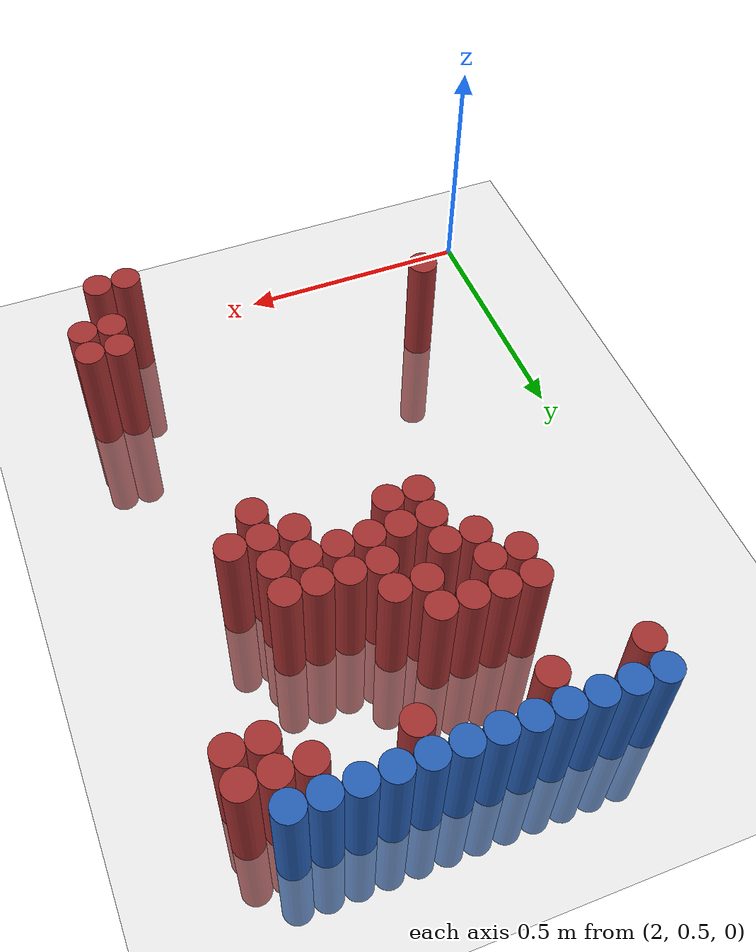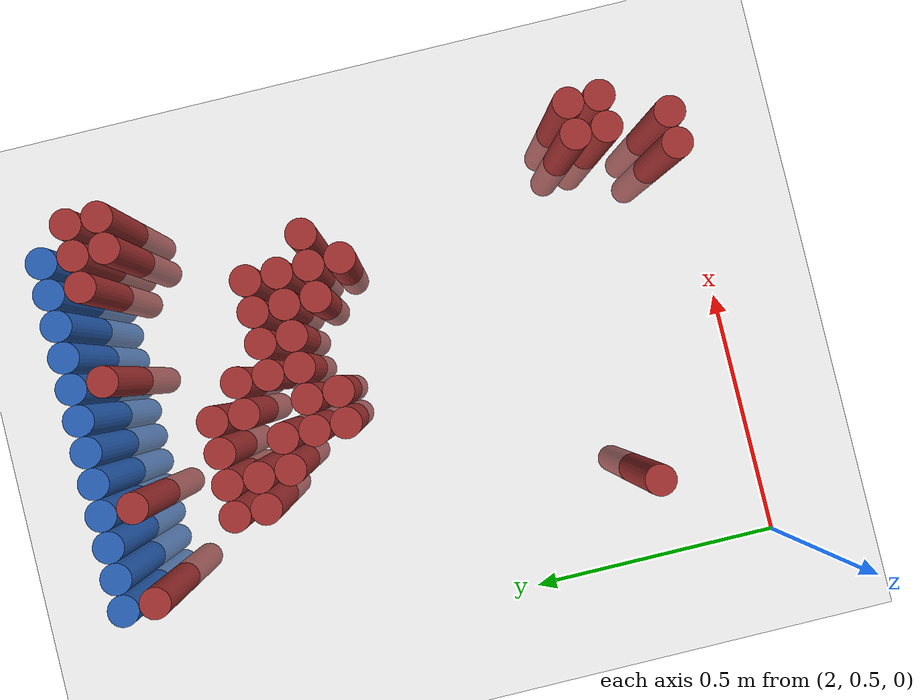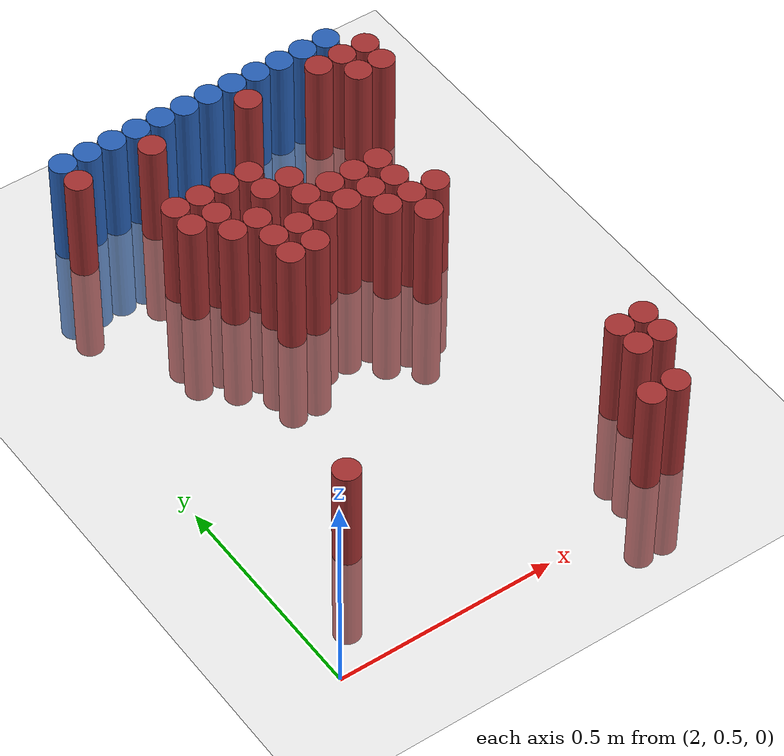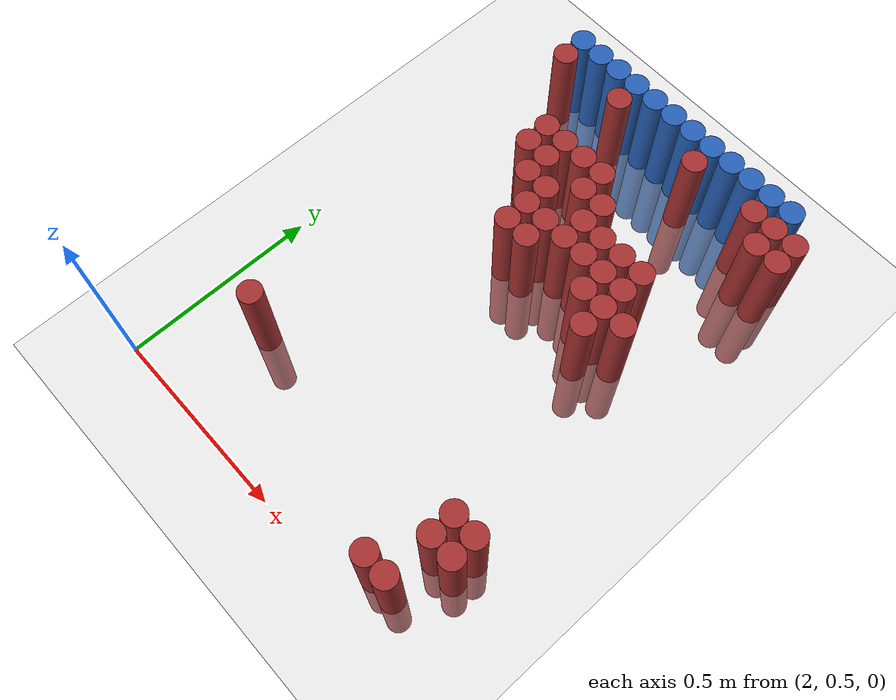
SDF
<sdf version="1.6">
 <world name="default">
  <model name="ground_plane">
   <static>1</static>
   <link name="link">
    <collision name="collision">
     <geometry><plane><normal>0 0 1</normal><size>100 100</size></plane></geometry>
     <surface><friction><ode><mu>100</mu><mu2>50</mu2></ode></friction></surface>
    </collision>
    <visual name="visual">
     <cast_shadows>0</cast_shadows>
     <geometry><plane><normal>0 0 1</normal><size>100 100</size></plane></geometry>
     <material>
      <script><uri>file://media/materials/scripts/gazebo.material</uri><name>Gazebo/Grey</name></script>
     </material>
    </visual>
   </link>
  </model>
  <model name="unit_cylinder_97">
   <static>1</static>
   <pose>2.190000 1.770000 0.000000 0.000000 0.000000 0.000000</pose>
   <link name="link">
    <inertial>
     <mass>1</mass>
     <inertia><ixx>0.145833</ixx><ixy>0</ixy><ixz>0</ixz><iyy>0.145833</iyy><iyz>0</iyz><izz>0.125</izz></inertia>
    </inertial>
    <collision name="collision">
     <geometry><cylinder><radius>0.030000</radius><length>0.5</length></cylinder></geometry>
    </collision>
    <visual name="visual">
     <geometry><cylinder><radius>0.030000</radius><length>0.5</length></cylinder></geometry>
     <material>
      <ambient>0.152000 0.379000 0.720000 1</ambient>
      <diffuse>0.152000 0.379000 0.720000 1</diffuse>
     </material>
     <material>
      <script><name>Gazebo/Grey</name><uri>file://media/materials/scripts/gazebo.material</uri></script>
     </material>
    </visual>
   </link>
  </model>
  <model name="unit_cylinder_98">
   <static>1</static>
   <pose>2.250000 1.770000 0.000000 0.000000 0.000000 0.000000</pose>
   <link name="link">
    <inertial>
     <mass>1</mass>
     <inertia><ixx>0.145833</ixx><ixy>0</ixy><ixz>0</ixz><iyy>0.145833</iyy><iyz>0</iyz><izz>0.125</izz></inertia>
    </inertial>
    <collision name="collision">
     <geometry><cylinder><radius>0.030000</radius><length>0.5</length></cylinder></geometry>
    </collision>
    <visual name="visual">
     <geometry><cylinder><radius>0.030000</radius><length>0.5</length></cylinder></geometry>
     <material>
      <ambient>0.152000 0.379000 0.720000 1</ambient>
      <diffuse>0.152000 0.379000 0.720000 1</diffuse>
     </material>
     <material>
      <script><name>Gazebo/Grey</name><uri>file://media/materials/scripts/gazebo.material</uri></script>
     </material>
    </visual>
   </link>
  </model>
  <model name="unit_cylinder_99">
   <static>1</static>
   <pose>2.310000 1.770000 0.000000 0.000000 0.000000 0.000000</pose>
   <link name="link">
    <inertial>
     <mass>1</mass>
     <inertia><ixx>0.145833</ixx><ixy>0</ixy><ixz>0</ixz><iyy>0.145833</iyy><iyz>0</iyz><izz>0.125</izz></inertia>
    </inertial>
    <collision name="collision">
     <geometry><cylinder><radius>0.030000</radius><length>0.5</length></cylinder></geometry>
    </collision>
    <visual name="visual">
     <geometry><cylinder><radius>0.030000</radius><length>0.5</length></cylinder></geometry>
     <material>
      <ambient>0.152000 0.379000 0.720000 1</ambient>
      <diffuse>0.152000 0.379000 0.720000 1</diffuse>
     </material>
     <material>
      <script><name>Gazebo/Grey</name><uri>file://media/materials/scripts/gazebo.material</uri></script>
     </material>
    </visual>
   </link>
  </model>
  <model name="unit_cylinder_100">
   <static>1</static>
   <pose>2.370000 1.770000 0.000000 0.000000 0.000000 0.000000</pose>
   <link name="link">
    <inertial>
     <mass>1</mass>
     <inertia><ixx>0.145833</ixx><ixy>0</ixy><ixz>0</ixz><iyy>0.145833</iyy><iyz>0</iyz><izz>0.125</izz></inertia>
    </inertial>
    <collision name="collision">
     <geometry><cylinder><radius>0.030000</radius><length>0.5</length></cylinder></geometry>
    </collision>
    <visual name="visual">
     <geometry><cylinder><radius>0.030000</radius><length>0.5</length></cylinder></geometry>
     <material>
      <ambient>0.152000 0.379000 0.720000 1</ambient>
      <diffuse>0.152000 0.379000 0.720000 1</diffuse>
     </material>
     <material>
      <script><name>Gazebo/Grey</name><uri>file://media/materials/scripts/gazebo.material</uri></script>
     </material>
    </visual>
   </link>
  </model>
  <model name="unit_cylinder_101">
   <static>1</static>
   <pose>2.430000 1.770000 0.000000 0.000000 0.000000 0.000000</pose>
   <link name="link">
    <inertial>
     <mass>1</mass>
     <inertia><ixx>0.145833</ixx><ixy>0</ixy><ixz>0</ixz><iyy>0.145833</iyy><iyz>0</iyz><izz>0.125</izz></inertia>
    </inertial>
    <collision name="collision">
     <geometry><cylinder><radius>0.030000</radius><length>0.5</length></cylinder></geometry>
    </collision>
    <visual name="visual">
     <geometry><cylinder><radius>0.030000</radius><length>0.5</length></cylinder></geometry>
     <material>
      <ambient>0.152000 0.379000 0.720000 1</ambient>
      <diffuse>0.152000 0.379000 0.720000 1</diffuse>
     </material>
     <material>
      <script><name>Gazebo/Grey</name><uri>file://media/materials/scripts/gazebo.material</uri></script>
     </material>
    </visual>
   </link>
  </model>
  <model name="unit_cylinder_102">
   <static>1</static>
   <pose>2.490000 1.770000 0.000000 0.000000 0.000000 0.000000</pose>
   <link name="link">
    <inertial>
     <mass>1</mass>
     <inertia><ixx>0.145833</ixx><ixy>0</ixy><ixz>0</ixz><iyy>0.145833</iyy><iyz>0</iyz><izz>0.125</izz></inertia>
    </inertial>
    <collision name="collision">
     <geometry><cylinder><radius>0.030000</radius><length>0.5</length></cylinder></geometry>
    </collision>
    <visual name="visual">
     <geometry><cylinder><radius>0.030000</radius><length>0.5</length></cylinder></geometry>
     <material>
      <ambient>0.152000 0.379000 0.720000 1</ambient>
      <diffuse>0.152000 0.379000 0.720000 1</diffuse>
     </material>
     <material>
      <script><name>Gazebo/Grey</name><uri>file://media/materials/scripts/gazebo.material</uri></script>
     </material>
    </visual>
   </link>
  </model>
  <model name="unit_cylinder_103">
   <static>1</static>
   <pose>2.550000 1.770000 0.000000 0.000000 0.000000 0.000000</pose>
   <link name="link">
    <inertial>
     <mass>1</mass>
     <inertia><ixx>0.145833</ixx><ixy>0</ixy><ixz>0</ixz><iyy>0.145833</iyy><iyz>0</iyz><izz>0.125</izz></inertia>
    </inertial>
    <collision name="collision">
     <geometry><cylinder><radius>0.030000</radius><length>0.5</length></cylinder></geometry>
    </collision>
    <visual name="visual">
     <geometry><cylinder><radius>0.030000</radius><length>0.5</length></cylinder></geometry>
     <material>
      <ambient>0.152000 0.379000 0.720000 1</ambient>
      <diffuse>0.152000 0.379000 0.720000 1</diffuse>
     </material>
     <material>
      <script><name>Gazebo/Grey</name><uri>file://media/materials/scripts/gazebo.material</uri></script>
     </material>
    </visual>
   </link>
  </model>
  <model name="unit_cylinder_104">
   <static>1</static>
   <pose>2.610000 1.770000 0.000000 0.000000 0.000000 0.000000</pose>
   <link name="link">
    <inertial>
     <mass>1</mass>
     <inertia><ixx>0.145833</ixx><ixy>0</ixy><ixz>0</ixz><iyy>0.145833</iyy><iyz>0</iyz><izz>0.125</izz></inertia>
    </inertial>
    <collision name="collision">
     <geometry><cylinder><radius>0.030000</radius><length>0.5</length></cylinder></geometry>
    </collision>
    <visual name="visual">
     <geometry><cylinder><radius>0.030000</radius><length>0.5</length></cylinder></geometry>
     <material>
      <ambient>0.152000 0.379000 0.720000 1</ambient>
      <diffuse>0.152000 0.379000 0.720000 1</diffuse>
     </material>
     <material>
      <script><name>Gazebo/Grey</name><uri>file://media/materials/scripts/gazebo.material</uri></script>
     </material>
    </visual>
   </link>
  </model>
  <model name="unit_cylinder_105">
   <static>1</static>
   <pose>2.670000 1.770000 0.000000 0.000000 0.000000 0.000000</pose>
   <link name="link">
    <inertial>
     <mass>1</mass>
     <inertia><ixx>0.145833</ixx><ixy>0</ixy><ixz>0</ixz><iyy>0.145833</iyy><iyz>0</iyz><izz>0.125</izz></inertia>
    </inertial>
    <collision name="collision">
     <geometry><cylinder><radius>0.030000</radius><length>0.5</length></cylinder></geometry>
    </collision>
    <visual name="visual">
     <geometry><cylinder><radius>0.030000</radius><length>0.5</length></cylinder></geometry>
     <material>
      <ambient>0.152000 0.379000 0.720000 1</ambient>
      <diffuse>0.152000 0.379000 0.720000 1</diffuse>
     </material>
     <material>
      <script><name>Gazebo/Grey</name><uri>file://media/materials/scripts/gazebo.material</uri></script>
     </material>
    </visual>
   </link>
  </model>
  <model name="unit_cylinder_106">
   <static>1</static>
   <pose>2.730000 1.770000 0.000000 0.000000 0.000000 0.000000</pose>
   <link name="link">
    <inertial>
     <mass>1</mass>
     <inertia><ixx>0.145833</ixx><ixy>0</ixy><ixz>0</ixz><iyy>0.145833</iyy><iyz>0</iyz><izz>0.125</izz></inertia>
    </inertial>
    <collision name="collision">
     <geometry><cylinder><radius>0.030000</radius><length>0.5</length></cylinder></geometry>
    </collision>
    <visual name="visual">
     <geometry><cylinder><radius>0.030000</radius><length>0.5</length></cylinder></geometry>
     <material>
      <ambient>0.152000 0.379000 0.720000 1</ambient>
      <diffuse>0.152000 0.379000 0.720000 1</diffuse>
     </material>
     <material>
      <script><name>Gazebo/Grey</name><uri>file://media/materials/scripts/gazebo.material</uri></script>
     </material>
    </visual>
   </link>
  </model>
  <model name="unit_cylinder_107">
   <static>1</static>
   <pose>2.790000 1.770000 0.000000 0.000000 0.000000 0.000000</pose>
   <link name="link">
    <inertial>
     <mass>1</mass>
     <inertia><ixx>0.145833</ixx><ixy>0</ixy><ixz>0</ixz><iyy>0.145833</iyy><iyz>0</iyz><izz>0.125</izz></inertia>
    </inertial>
    <collision name="collision">
     <geometry><cylinder><radius>0.030000</radius><length>0.5</length></cylinder></geometry>
    </collision>
    <visual name="visual">
     <geometry><cylinder><radius>0.030000</radius><length>0.5</length></cylinder></geometry>
     <material>
      <ambient>0.152000 0.379000 0.720000 1</ambient>
      <diffuse>0.152000 0.379000 0.720000 1</diffuse>
     </material>
     <material>
      <script><name>Gazebo/Grey</name><uri>file://media/materials/scripts/gazebo.material</uri></script>
     </material>
    </visual>
   </link>
  </model>
  <model name="unit_cylinder_108">
   <static>1</static>
   <pose>2.850000 1.770000 0.000000 0.000000 0.000000 0.000000</pose>
   <link name="link">
    <inertial>
     <mass>1</mass>
     <inertia><ixx>0.145833</ixx><ixy>0</ixy><ixz>0</ixz><iyy>0.145833</iyy><iyz>0</iyz><izz>0.125</izz></inertia>
    </inertial>
    <collision name="collision">
     <geometry><cylinder><radius>0.030000</radius><length>0.5</length></cylinder></geometry>
    </collision>
    <visual name="visual">
     <geometry><cylinder><radius>0.030000</radius><length>0.5</length></cylinder></geometry>
     <material>
      <ambient>0.152000 0.379000 0.720000 1</ambient>
      <diffuse>0.152000 0.379000 0.720000 1</diffuse>
     </material>
     <material>
      <script><name>Gazebo/Grey</name><uri>file://media/materials/scripts/gazebo.material</uri></script>
     </material>
    </visual>
   </link>
  </model>
  <model name="unit_cylinder_126">
   <static>1</static>
   <pose>2.190000 1.710000 0.000000 0.000000 0.000000 0.000000</pose>
   <link name="link">
    <inertial>
     <mass>1</mass>
     <inertia><ixx>0.145833</ixx><ixy>0</ixy><ixz>0</ixz><iyy>0.145833</iyy><iyz>0</iyz><izz>0.125</izz></inertia>
    </inertial>
    <collision name="collision">
     <geometry><cylinder><radius>0.030000</radius><length>0.5</length></cylinder></geometry>
    </collision>
    <visual name="visual">
     <geometry><cylinder><radius>0.030000</radius><length>0.5</length></cylinder></geometry>
     <material>
      <ambient>0.648000 0.192000 0.192000 1</ambient>
      <diffuse>0.648000 0.192000 0.192000 1</diffuse>
     </material>
     <material>
      <script><name>Gazebo/Grey</name><uri>file://media/materials/scripts/gazebo.material</uri></script>
     </material>
    </visual>
   </link>
  </model>
  <model name="unit_cylinder_127">
   <static>1</static>
   <pose>2.370000 1.710000 0.000000 0.000000 0.000000 0.000000</pose>
   <link name="link">
    <inertial>
     <mass>1</mass>
     <inertia><ixx>0.145833</ixx><ixy>0</ixy><ixz>0</ixz><iyy>0.145833</iyy><iyz>0</iyz><izz>0.125</izz></inertia>
    </inertial>
    <collision name="collision">
     <geometry><cylinder><radius>0.030000</radius><length>0.5</length></cylinder></geometry>
    </collision>
    <visual name="visual">
     <geometry><cylinder><radius>0.030000</radius><length>0.5</length></cylinder></geometry>
     <material>
      <ambient>0.648000 0.192000 0.192000 1</ambient>
      <diffuse>0.648000 0.192000 0.192000 1</diffuse>
     </material>
     <material>
      <script><name>Gazebo/Grey</name><uri>file://media/materials/scripts/gazebo.material</uri></script>
     </material>
    </visual>
   </link>
  </model>
  <model name="unit_cylinder_128">
   <static>1</static>
   <pose>2.610000 1.710000 0.000000 0.000000 0.000000 0.000000</pose>
   <link name="link">
    <inertial>
     <mass>1</mass>
     <inertia><ixx>0.145833</ixx><ixy>0</ixy><ixz>0</ixz><iyy>0.145833</iyy><iyz>0</iyz><izz>0.125</izz></inertia>
    </inertial>
    <collision name="collision">
     <geometry><cylinder><radius>0.030000</radius><length>0.5</length></cylinder></geometry>
    </collision>
    <visual name="visual">
     <geometry><cylinder><radius>0.030000</radius><length>0.5</length></cylinder></geometry>
     <material>
      <ambient>0.648000 0.192000 0.192000 1</ambient>
      <diffuse>0.648000 0.192000 0.192000 1</diffuse>
     </material>
     <material>
      <script><name>Gazebo/Grey</name><uri>file://media/materials/scripts/gazebo.material</uri></script>
     </material>
    </visual>
   </link>
  </model>
  <model name="unit_cylinder_129">
   <static>1</static>
   <pose>2.790000 1.710000 0.000000 0.000000 0.000000 0.000000</pose>
   <link name="link">
    <inertial>
     <mass>1</mass>
     <inertia><ixx>0.145833</ixx><ixy>0</ixy><ixz>0</ixz><iyy>0.145833</iyy><iyz>0</iyz><izz>0.125</izz></inertia>
    </inertial>
    <collision name="collision">
     <geometry><cylinder><radius>0.030000</radius><length>0.5</length></cylinder></geometry>
    </collision>
    <visual name="visual">
     <geometry><cylinder><radius>0.030000</radius><length>0.5</length></cylinder></geometry>
     <material>
      <ambient>0.648000 0.192000 0.192000 1</ambient>
      <diffuse>0.648000 0.192000 0.192000 1</diffuse>
     </material>
     <material>
      <script><name>Gazebo/Grey</name><uri>file://media/materials/scripts/gazebo.material</uri></script>
     </material>
    </visual>
   </link>
  </model>
  <model name="unit_cylinder_130">
   <static>1</static>
   <pose>2.850000 1.710000 0.000000 0.000000 0.000000 0.000000</pose>
   <link name="link">
    <inertial>
     <mass>1</mass>
     <inertia><ixx>0.145833</ixx><ixy>0</ixy><ixz>0</ixz><iyy>0.145833</iyy><iyz>0</iyz><izz>0.125</izz></inertia>
    </inertial>
    <collision name="collision">
     <geometry><cylinder><radius>0.030000</radius><length>0.5</length></cylinder></geometry>
    </collision>
    <visual name="visual">
     <geometry><cylinder><radius>0.030000</radius><length>0.5</length></cylinder></geometry>
     <material>
      <ambient>0.648000 0.192000 0.192000 1</ambient>
      <diffuse>0.648000 0.192000 0.192000 1</diffuse>
     </material>
     <material>
      <script><name>Gazebo/Grey</name><uri>file://media/materials/scripts/gazebo.material</uri></script>
     </material>
    </visual>
   </link>
  </model>
  <model name="unit_cylinder_131">
   <static>1</static>
   <pose>2.910000 1.710000 0.000000 0.000000 0.000000 0.000000</pose>
   <link name="link">
    <inertial>
     <mass>1</mass>
     <inertia><ixx>0.145833</ixx><ixy>0</ixy><ixz>0</ixz><iyy>0.145833</iyy><iyz>0</iyz><izz>0.125</izz></inertia>
    </inertial>
    <collision name="collision">
     <geometry><cylinder><radius>0.030000</radius><length>0.5</length></cylinder></geometry>
    </collision>
    <visual name="visual">
     <geometry><cylinder><radius>0.030000</radius><length>0.5</length></cylinder></geometry>
     <material>
      <ambient>0.648000 0.192000 0.192000 1</ambient>
      <diffuse>0.648000 0.192000 0.192000 1</diffuse>
     </material>
     <material>
      <script><name>Gazebo/Grey</name><uri>file://media/materials/scripts/gazebo.material</uri></script>
     </material>
    </visual>
   </link>
  </model>
  <model name="unit_cylinder_140">
   <static>1</static>
   <pose>2.850000 1.650000 0.000000 0.000000 0.000000 0.000000</pose>
   <link name="link">
    <inertial>
     <mass>1</mass>
     <inertia><ixx>0.145833</ixx><ixy>0</ixy><ixz>0</ixz><iyy>0.145833</iyy><iyz>0</iyz><izz>0.125</izz></inertia>
    </inertial>
    <collision name="collision">
     <geometry><cylinder><radius>0.030000</radius><length>0.5</length></cylinder></geometry>
    </collision>
    <visual name="visual">
     <geometry><cylinder><radius>0.030000</radius><length>0.5</length></cylinder></geometry>
     <material>
      <ambient>0.648000 0.192000 0.192000 1</ambient>
      <diffuse>0.648000 0.192000 0.192000 1</diffuse>
     </material>
     <material>
      <script><name>Gazebo/Grey</name><uri>file://media/materials/scripts/gazebo.material</uri></script>
     </material>
    </visual>
   </link>
  </model>
  <model name="unit_cylinder_141">
   <static>1</static>
   <pose>2.910000 1.650000 0.000000 0.000000 0.000000 0.000000</pose>
   <link name="link">
    <inertial>
     <mass>1</mass>
     <inertia><ixx>0.145833</ixx><ixy>0</ixy><ixz>0</ixz><iyy>0.145833</iyy><iyz>0</iyz><izz>0.125</izz></inertia>
    </inertial>
    <collision name="collision">
     <geometry><cylinder><radius>0.030000</radius><length>0.5</length></cylinder></geometry>
    </collision>
    <visual name="visual">
     <geometry><cylinder><radius>0.030000</radius><length>0.5</length></cylinder></geometry>
     <material>
      <ambient>0.648000 0.192000 0.192000 1</ambient>
      <diffuse>0.648000 0.192000 0.192000 1</diffuse>
     </material>
     <material>
      <script><name>Gazebo/Grey</name><uri>file://media/materials/scripts/gazebo.material</uri></script>
     </material>
    </visual>
   </link>
  </model>
  <model name="unit_cylinder_152">
   <static>1</static>
   <pose>2.310000 1.530000 0.000000 0.000000 0.000000 0.000000</pose>
   <link name="link">
    <inertial>
     <mass>1</mass>
     <inertia><ixx>0.145833</ixx><ixy>0</ixy><ixz>0</ixz><iyy>0.145833</iyy><iyz>0</iyz><izz>0.125</izz></inertia>
    </inertial>
    <collision name="collision">
     <geometry><cylinder><radius>0.030000</radius><length>0.5</length></cylinder></geometry>
    </collision>
    <visual name="visual">
     <geometry><cylinder><radius>0.030000</radius><length>0.5</length></cylinder></geometry>
     <material>
      <ambient>0.648000 0.192000 0.192000 1</ambient>
      <diffuse>0.648000 0.192000 0.192000 1</diffuse>
     </material>
     <material>
      <script><name>Gazebo/Grey</name><uri>file://media/materials/scripts/gazebo.material</uri></script>
     </material>
    </visual>
   </link>
  </model>
  <model name="unit_cylinder_153">
   <static>1</static>
   <pose>2.370000 1.530000 0.000000 0.000000 0.000000 0.000000</pose>
   <link name="link">
    <inertial>
     <mass>1</mass>
     <inertia><ixx>0.145833</ixx><ixy>0</ixy><ixz>0</ixz><iyy>0.145833</iyy><iyz>0</iyz><izz>0.125</izz></inertia>
    </inertial>
    <collision name="collision">
     <geometry><cylinder><radius>0.030000</radius><length>0.5</length></cylinder></geometry>
    </collision>
    <visual name="visual">
     <geometry><cylinder><radius>0.030000</radius><length>0.5</length></cylinder></geometry>
     <material>
      <ambient>0.648000 0.192000 0.192000 1</ambient>
      <diffuse>0.648000 0.192000 0.192000 1</diffuse>
     </material>
     <material>
      <script><name>Gazebo/Grey</name><uri>file://media/materials/scripts/gazebo.material</uri></script>
     </material>
    </visual>
   </link>
  </model>
  <model name="unit_cylinder_154">
   <static>1</static>
   <pose>2.430000 1.530000 0.000000 0.000000 0.000000 0.000000</pose>
   <link name="link">
    <inertial>
     <mass>1</mass>
     <inertia><ixx>0.145833</ixx><ixy>0</ixy><ixz>0</ixz><iyy>0.145833</iyy><iyz>0</iyz><izz>0.125</izz></inertia>
    </inertial>
    <collision name="collision">
     <geometry><cylinder><radius>0.030000</radius><length>0.5</length></cylinder></geometry>
    </collision>
    <visual name="visual">
     <geometry><cylinder><radius>0.030000</radius><length>0.5</length></cylinder></geometry>
     <material>
      <ambient>0.648000 0.192000 0.192000 1</ambient>
      <diffuse>0.648000 0.192000 0.192000 1</diffuse>
     </material>
     <material>
      <script><name>Gazebo/Grey</name><uri>file://media/materials/scripts/gazebo.material</uri></script>
     </material>
    </visual>
   </link>
  </model>
  <model name="unit_cylinder_155">
   <static>1</static>
   <pose>2.490000 1.530000 0.000000 0.000000 0.000000 0.000000</pose>
   <link name="link">
    <inertial>
     <mass>1</mass>
     <inertia><ixx>0.145833</ixx><ixy>0</ixy><ixz>0</ixz><iyy>0.145833</iyy><iyz>0</iyz><izz>0.125</izz></inertia>
    </inertial>
    <collision name="collision">
     <geometry><cylinder><radius>0.030000</radius><length>0.5</length></cylinder></geometry>
    </collision>
    <visual name="visual">
     <geometry><cylinder><radius>0.030000</radius><length>0.5</length></cylinder></geometry>
     <material>
      <ambient>0.648000 0.192000 0.192000 1</ambient>
      <diffuse>0.648000 0.192000 0.192000 1</diffuse>
     </material>
     <material>
      <script><name>Gazebo/Grey</name><uri>file://media/materials/scripts/gazebo.material</uri></script>
     </material>
    </visual>
   </link>
  </model>
  <model name="unit_cylinder_160">
   <static>1</static>
   <pose>2.310000 1.470000 0.000000 0.000000 0.000000 0.000000</pose>
   <link name="link">
    <inertial>
     <mass>1</mass>
     <inertia><ixx>0.145833</ixx><ixy>0</ixy><ixz>0</ixz><iyy>0.145833</iyy><iyz>0</iyz><izz>0.125</izz></inertia>
    </inertial>
    <collision name="collision">
     <geometry><cylinder><radius>0.030000</radius><length>0.5</length></cylinder></geometry>
    </collision>
    <visual name="visual">
     <geometry><cylinder><radius>0.030000</radius><length>0.5</length></cylinder></geometry>
     <material>
      <ambient>0.648000 0.192000 0.192000 1</ambient>
      <diffuse>0.648000 0.192000 0.192000 1</diffuse>
     </material>
     <material>
      <script><name>Gazebo/Grey</name><uri>file://media/materials/scripts/gazebo.material</uri></script>
     </material>
    </visual>
   </link>
  </model>
  <model name="unit_cylinder_161">
   <static>1</static>
   <pose>2.370000 1.470000 0.000000 0.000000 0.000000 0.000000</pose>
   <link name="link">
    <inertial>
     <mass>1</mass>
     <inertia><ixx>0.145833</ixx><ixy>0</ixy><ixz>0</ixz><iyy>0.145833</iyy><iyz>0</iyz><izz>0.125</izz></inertia>
    </inertial>
    <collision name="collision">
     <geometry><cylinder><radius>0.030000</radius><length>0.5</length></cylinder></geometry>
    </collision>
    <visual name="visual">
     <geometry><cylinder><radius>0.030000</radius><length>0.5</length></cylinder></geometry>
     <material>
      <ambient>0.648000 0.192000 0.192000 1</ambient>
      <diffuse>0.648000 0.192000 0.192000 1</diffuse>
     </material>
     <material>
      <script><name>Gazebo/Grey</name><uri>file://media/materials/scripts/gazebo.material</uri></script>
     </material>
    </visual>
   </link>
  </model>
  <model name="unit_cylinder_162">
   <static>1</static>
   <pose>2.490000 1.470000 0.000000 0.000000 0.000000 0.000000</pose>
   <link name="link">
    <inertial>
     <mass>1</mass>
     <inertia><ixx>0.145833</ixx><ixy>0</ixy><ixz>0</ixz><iyy>0.145833</iyy><iyz>0</iyz><izz>0.125</izz></inertia>
    </inertial>
    <collision name="collision">
     <geometry><cylinder><radius>0.030000</radius><length>0.5</length></cylinder></geometry>
    </collision>
    <visual name="visual">
     <geometry><cylinder><radius>0.030000</radius><length>0.5</length></cylinder></geometry>
     <material>
      <ambient>0.648000 0.192000 0.192000 1</ambient>
      <diffuse>0.648000 0.192000 0.192000 1</diffuse>
     </material>
     <material>
      <script><name>Gazebo/Grey</name><uri>file://media/materials/scripts/gazebo.material</uri></script>
     </material>
    </visual>
   </link>
  </model>
  <model name="unit_cylinder_163">
   <static>1</static>
   <pose>2.550000 1.470000 0.000000 0.000000 0.000000 0.000000</pose>
   <link name="link">
    <inertial>
     <mass>1</mass>
     <inertia><ixx>0.145833</ixx><ixy>0</ixy><ixz>0</ixz><iyy>0.145833</iyy><iyz>0</iyz><izz>0.125</izz></inertia>
    </inertial>
    <collision name="collision">
     <geometry><cylinder><radius>0.030000</radius><length>0.5</length></cylinder></geometry>
    </collision>
    <visual name="visual">
     <geometry><cylinder><radius>0.030000</radius><length>0.5</length></cylinder></geometry>
     <material>
      <ambient>0.648000 0.192000 0.192000 1</ambient>
      <diffuse>0.648000 0.192000 0.192000 1</diffuse>
     </material>
     <material>
      <script><name>Gazebo/Grey</name><uri>file://media/materials/scripts/gazebo.material</uri></script>
     </material>
    </visual>
   </link>
  </model>
  <model name="unit_cylinder_167">
   <static>1</static>
   <pose>2.370000 1.410000 0.000000 0.000000 0.000000 0.000000</pose>
   <link name="link">
    <inertial>
     <mass>1</mass>
     <inertia><ixx>0.145833</ixx><ixy>0</ixy><ixz>0</ixz><iyy>0.145833</iyy><iyz>0</iyz><izz>0.125</izz></inertia>
    </inertial>
    <collision name="collision">
     <geometry><cylinder><radius>0.030000</radius><length>0.5</length></cylinder></geometry>
    </collision>
    <visual name="visual">
     <geometry><cylinder><radius>0.030000</radius><length>0.5</length></cylinder></geometry>
     <material>
      <ambient>0.648000 0.192000 0.192000 1</ambient>
      <diffuse>0.648000 0.192000 0.192000 1</diffuse>
     </material>
     <material>
      <script><name>Gazebo/Grey</name><uri>file://media/materials/scripts/gazebo.material</uri></script>
     </material>
    </visual>
   </link>
  </model>
  <model name="unit_cylinder_168">
   <static>1</static>
   <pose>2.430000 1.410000 0.000000 0.000000 0.000000 0.000000</pose>
   <link name="link">
    <inertial>
     <mass>1</mass>
     <inertia><ixx>0.145833</ixx><ixy>0</ixy><ixz>0</ixz><iyy>0.145833</iyy><iyz>0</iyz><izz>0.125</izz></inertia>
    </inertial>
    <collision name="collision">
     <geometry><cylinder><radius>0.030000</radius><length>0.5</length></cylinder></geometry>
    </collision>
    <visual name="visual">
     <geometry><cylinder><radius>0.030000</radius><length>0.5</length></cylinder></geometry>
     <material>
      <ambient>0.648000 0.192000 0.192000 1</ambient>
      <diffuse>0.648000 0.192000 0.192000 1</diffuse>
     </material>
     <material>
      <script><name>Gazebo/Grey</name><uri>file://media/materials/scripts/gazebo.material</uri></script>
     </material>
    </visual>
   </link>
  </model>
  <model name="unit_cylinder_169">
   <static>1</static>
   <pose>2.550000 1.410000 0.000000 0.000000 0.000000 0.000000</pose>
   <link name="link">
    <inertial>
     <mass>1</mass>
     <inertia><ixx>0.145833</ixx><ixy>0</ixy><ixz>0</ixz><iyy>0.145833</iyy><iyz>0</iyz><izz>0.125</izz></inertia>
    </inertial>
    <collision name="collision">
     <geometry><cylinder><radius>0.030000</radius><length>0.5</length></cylinder></geometry>
    </collision>
    <visual name="visual">
     <geometry><cylinder><radius>0.030000</radius><length>0.5</length></cylinder></geometry>
     <material>
      <ambient>0.648000 0.192000 0.192000 1</ambient>
      <diffuse>0.648000 0.192000 0.192000 1</diffuse>
     </material>
     <material>
      <script><name>Gazebo/Grey</name><uri>file://media/materials/scripts/gazebo.material</uri></script>
     </material>
    </visual>
   </link>
  </model>
  <model name="unit_cylinder_170">
   <static>1</static>
   <pose>2.610000 1.410000 0.000000 0.000000 0.000000 0.000000</pose>
   <link name="link">
    <inertial>
     <mass>1</mass>
     <inertia><ixx>0.145833</ixx><ixy>0</ixy><ixz>0</ixz><iyy>0.145833</iyy><iyz>0</iyz><izz>0.125</izz></inertia>
    </inertial>
    <collision name="collision">
     <geometry><cylinder><radius>0.030000</radius><length>0.5</length></cylinder></geometry>
    </collision>
    <visual name="visual">
     <geometry><cylinder><radius>0.030000</radius><length>0.5</length></cylinder></geometry>
     <material>
      <ambient>0.648000 0.192000 0.192000 1</ambient>
      <diffuse>0.648000 0.192000 0.192000 1</diffuse>
     </material>
     <material>
      <script><name>Gazebo/Grey</name><uri>file://media/materials/scripts/gazebo.material</uri></script>
     </material>
    </visual>
   </link>
  </model>
  <model name="unit_cylinder_171">
   <static>1</static>
   <pose>2.670000 1.410000 0.000000 0.000000 0.000000 0.000000</pose>
   <link name="link">
    <inertial>
     <mass>1</mass>
     <inertia><ixx>0.145833</ixx><ixy>0</ixy><ixz>0</ixz><iyy>0.145833</iyy><iyz>0</iyz><izz>0.125</izz></inertia>
    </inertial>
    <collision name="collision">
     <geometry><cylinder><radius>0.030000</radius><length>0.5</length></cylinder></geometry>
    </collision>
    <visual name="visual">
     <geometry><cylinder><radius>0.030000</radius><length>0.5</length></cylinder></geometry>
     <material>
      <ambient>0.648000 0.192000 0.192000 1</ambient>
      <diffuse>0.648000 0.192000 0.192000 1</diffuse>
     </material>
     <material>
      <script><name>Gazebo/Grey</name><uri>file://media/materials/scripts/gazebo.material</uri></script>
     </material>
    </visual>
   </link>
  </model>
  <model name="unit_cylinder_172">
   <static>1</static>
   <pose>2.730000 1.410000 0.000000 0.000000 0.000000 0.000000</pose>
   <link name="link">
    <inertial>
     <mass>1</mass>
     <inertia><ixx>0.145833</ixx><ixy>0</ixy><ixz>0</ixz><iyy>0.145833</iyy><iyz>0</iyz><izz>0.125</izz></inertia>
    </inertial>
    <collision name="collision">
     <geometry><cylinder><radius>0.030000</radius><length>0.5</length></cylinder></geometry>
    </collision>
    <visual name="visual">
     <geometry><cylinder><radius>0.030000</radius><length>0.5</length></cylinder></geometry>
     <material>
      <ambient>0.648000 0.192000 0.192000 1</ambient>
      <diffuse>0.648000 0.192000 0.192000 1</diffuse>
     </material>
     <material>
      <script><name>Gazebo/Grey</name><uri>file://media/materials/scripts/gazebo.material</uri></script>
     </material>
    </visual>
   </link>
  </model>
  <model name="unit_cylinder_174">
   <static>1</static>
   <pose>2.430000 1.350000 0.000000 0.000000 0.000000 0.000000</pose>
   <link name="link">
    <inertial>
     <mass>1</mass>
     <inertia><ixx>0.145833</ixx><ixy>0</ixy><ixz>0</ixz><iyy>0.145833</iyy><iyz>0</iyz><izz>0.125</izz></inertia>
    </inertial>
    <collision name="collision">
     <geometry><cylinder><radius>0.030000</radius><length>0.5</length></cylinder></geometry>
    </collision>
    <visual name="visual">
     <geometry><cylinder><radius>0.030000</radius><length>0.5</length></cylinder></geometry>
     <material>
      <ambient>0.648000 0.192000 0.192000 1</ambient>
      <diffuse>0.648000 0.192000 0.192000 1</diffuse>
     </material>
     <material>
      <script><name>Gazebo/Grey</name><uri>file://media/materials/scripts/gazebo.material</uri></script>
     </material>
    </visual>
   </link>
  </model>
  <model name="unit_cylinder_175">
   <static>1</static>
   <pose>2.490000 1.350000 0.000000 0.000000 0.000000 0.000000</pose>
   <link name="link">
    <inertial>
     <mass>1</mass>
     <inertia><ixx>0.145833</ixx><ixy>0</ixy><ixz>0</ixz><iyy>0.145833</iyy><iyz>0</iyz><izz>0.125</izz></inertia>
    </inertial>
    <collision name="collision">
     <geometry><cylinder><radius>0.030000</radius><length>0.5</length></cylinder></geometry>
    </collision>
    <visual name="visual">
     <geometry><cylinder><radius>0.030000</radius><length>0.5</length></cylinder></geometry>
     <material>
      <ambient>0.648000 0.192000 0.192000 1</ambient>
      <diffuse>0.648000 0.192000 0.192000 1</diffuse>
     </material>
     <material>
      <script><name>Gazebo/Grey</name><uri>file://media/materials/scripts/gazebo.material</uri></script>
     </material>
    </visual>
   </link>
  </model>
  <model name="unit_cylinder_176">
   <static>1</static>
   <pose>2.550000 1.350000 0.000000 0.000000 0.000000 0.000000</pose>
   <link name="link">
    <inertial>
     <mass>1</mass>
     <inertia><ixx>0.145833</ixx><ixy>0</ixy><ixz>0</ixz><iyy>0.145833</iyy><iyz>0</iyz><izz>0.125</izz></inertia>
    </inertial>
    <collision name="collision">
     <geometry><cylinder><radius>0.030000</radius><length>0.5</length></cylinder></geometry>
    </collision>
    <visual name="visual">
     <geometry><cylinder><radius>0.030000</radius><length>0.5</length></cylinder></geometry>
     <material>
      <ambient>0.648000 0.192000 0.192000 1</ambient>
      <diffuse>0.648000 0.192000 0.192000 1</diffuse>
     </material>
     <material>
      <script><name>Gazebo/Grey</name><uri>file://media/materials/scripts/gazebo.material</uri></script>
     </material>
    </visual>
   </link>
  </model>
  <model name="unit_cylinder_177">
   <static>1</static>
   <pose>2.610000 1.350000 0.000000 0.000000 0.000000 0.000000</pose>
   <link name="link">
    <inertial>
     <mass>1</mass>
     <inertia><ixx>0.145833</ixx><ixy>0</ixy><ixz>0</ixz><iyy>0.145833</iyy><iyz>0</iyz><izz>0.125</izz></inertia>
    </inertial>
    <collision name="collision">
     <geometry><cylinder><radius>0.030000</radius><length>0.5</length></cylinder></geometry>
    </collision>
    <visual name="visual">
     <geometry><cylinder><radius>0.030000</radius><length>0.5</length></cylinder></geometry>
     <material>
      <ambient>0.648000 0.192000 0.192000 1</ambient>
      <diffuse>0.648000 0.192000 0.192000 1</diffuse>
     </material>
     <material>
      <script><name>Gazebo/Grey</name><uri>file://media/materials/scripts/gazebo.material</uri></script>
     </material>
    </visual>
   </link>
  </model>
  <model name="unit_cylinder_178">
   <static>1</static>
   <pose>2.670000 1.350000 0.000000 0.000000 0.000000 0.000000</pose>
   <link name="link">
    <inertial>
     <mass>1</mass>
     <inertia><ixx>0.145833</ixx><ixy>0</ixy><ixz>0</ixz><iyy>0.145833</iyy><iyz>0</iyz><izz>0.125</izz></inertia>
    </inertial>
    <collision name="collision">
     <geometry><cylinder><radius>0.030000</radius><length>0.5</length></cylinder></geometry>
    </collision>
    <visual name="visual">
     <geometry><cylinder><radius>0.030000</radius><length>0.5</length></cylinder></geometry>
     <material>
      <ambient>0.648000 0.192000 0.192000 1</ambient>
      <diffuse>0.648000 0.192000 0.192000 1</diffuse>
     </material>
     <material>
      <script><name>Gazebo/Grey</name><uri>file://media/materials/scripts/gazebo.material</uri></script>
     </material>
    </visual>
   </link>
  </model>
  <model name="unit_cylinder_179">
   <static>1</static>
   <pose>2.730000 1.350000 0.000000 0.000000 0.000000 0.000000</pose>
   <link name="link">
    <inertial>
     <mass>1</mass>
     <inertia><ixx>0.145833</ixx><ixy>0</ixy><ixz>0</ixz><iyy>0.145833</iyy><iyz>0</iyz><izz>0.125</izz></inertia>
    </inertial>
    <collision name="collision">
     <geometry><cylinder><radius>0.030000</radius><length>0.5</length></cylinder></geometry>
    </collision>
    <visual name="visual">
     <geometry><cylinder><radius>0.030000</radius><length>0.5</length></cylinder></geometry>
     <material>
      <ambient>0.648000 0.192000 0.192000 1</ambient>
      <diffuse>0.648000 0.192000 0.192000 1</diffuse>
     </material>
     <material>
      <script><name>Gazebo/Grey</name><uri>file://media/materials/scripts/gazebo.material</uri></script>
     </material>
    </visual>
   </link>
  </model>
  <model name="unit_cylinder_182">
   <static>1</static>
   <pose>2.430000 1.290000 0.000000 0.000000 0.000000 0.000000</pose>
   <link name="link">
    <inertial>
     <mass>1</mass>
     <inertia><ixx>0.145833</ixx><ixy>0</ixy><ixz>0</ixz><iyy>0.145833</iyy><iyz>0</iyz><izz>0.125</izz></inertia>
    </inertial>
    <collision name="collision">
     <geometry><cylinder><radius>0.030000</radius><length>0.5</length></cylinder></geometry>
    </collision>
    <visual name="visual">
     <geometry><cylinder><radius>0.030000</radius><length>0.5</length></cylinder></geometry>
     <material>
      <ambient>0.648000 0.192000 0.192000 1</ambient>
      <diffuse>0.648000 0.192000 0.192000 1</diffuse>
     </material>
     <material>
      <script><name>Gazebo/Grey</name><uri>file://media/materials/scripts/gazebo.material</uri></script>
     </material>
    </visual>
   </link>
  </model>
  <model name="unit_cylinder_183">
   <static>1</static>
   <pose>2.490000 1.290000 0.000000 0.000000 0.000000 0.000000</pose>
   <link name="link">
    <inertial>
     <mass>1</mass>
     <inertia><ixx>0.145833</ixx><ixy>0</ixy><ixz>0</ixz><iyy>0.145833</iyy><iyz>0</iyz><izz>0.125</izz></inertia>
    </inertial>
    <collision name="collision">
     <geometry><cylinder><radius>0.030000</radius><length>0.5</length></cylinder></geometry>
    </collision>
    <visual name="visual">
     <geometry><cylinder><radius>0.030000</radius><length>0.5</length></cylinder></geometry>
     <material>
      <ambient>0.648000 0.192000 0.192000 1</ambient>
      <diffuse>0.648000 0.192000 0.192000 1</diffuse>
     </material>
     <material>
      <script><name>Gazebo/Grey</name><uri>file://media/materials/scripts/gazebo.material</uri></script>
     </material>
    </visual>
   </link>
  </model>
  <model name="unit_cylinder_184">
   <static>1</static>
   <pose>2.670000 1.290000 0.000000 0.000000 0.000000 0.000000</pose>
   <link name="link">
    <inertial>
     <mass>1</mass>
     <inertia><ixx>0.145833</ixx><ixy>0</ixy><ixz>0</ixz><iyy>0.145833</iyy><iyz>0</iyz><izz>0.125</izz></inertia>
    </inertial>
    <collision name="collision">
     <geometry><cylinder><radius>0.030000</radius><length>0.5</length></cylinder></geometry>
    </collision>
    <visual name="visual">
     <geometry><cylinder><radius>0.030000</radius><length>0.5</length></cylinder></geometry>
     <material>
      <ambient>0.648000 0.192000 0.192000 1</ambient>
      <diffuse>0.648000 0.192000 0.192000 1</diffuse>
     </material>
     <material>
      <script><name>Gazebo/Grey</name><uri>file://media/materials/scripts/gazebo.material</uri></script>
     </material>
    </visual>
   </link>
  </model>
  <model name="unit_cylinder_185">
   <static>1</static>
   <pose>2.730000 1.290000 0.000000 0.000000 0.000000 0.000000</pose>
   <link name="link">
    <inertial>
     <mass>1</mass>
     <inertia><ixx>0.145833</ixx><ixy>0</ixy><ixz>0</ixz><iyy>0.145833</iyy><iyz>0</iyz><izz>0.125</izz></inertia>
    </inertial>
    <collision name="collision">
     <geometry><cylinder><radius>0.030000</radius><length>0.5</length></cylinder></geometry>
    </collision>
    <visual name="visual">
     <geometry><cylinder><radius>0.030000</radius><length>0.5</length></cylinder></geometry>
     <material>
      <ambient>0.648000 0.192000 0.192000 1</ambient>
      <diffuse>0.648000 0.192000 0.192000 1</diffuse>
     </material>
     <material>
      <script><name>Gazebo/Grey</name><uri>file://media/materials/scripts/gazebo.material</uri></script>
     </material>
    </visual>
   </link>
  </model>
  <model name="unit_cylinder_186">
   <static>1</static>
   <pose>2.790000 1.290000 0.000000 0.000000 0.000000 0.000000</pose>
   <link name="link">
    <inertial>
     <mass>1</mass>
     <inertia><ixx>0.145833</ixx><ixy>0</ixy><ixz>0</ixz><iyy>0.145833</iyy><iyz>0</iyz><izz>0.125</izz></inertia>
    </inertial>
    <collision name="collision">
     <geometry><cylinder><radius>0.030000</radius><length>0.5</length></cylinder></geometry>
    </collision>
    <visual name="visual">
     <geometry><cylinder><radius>0.030000</radius><length>0.5</length></cylinder></geometry>
     <material>
      <ambient>0.648000 0.192000 0.192000 1</ambient>
      <diffuse>0.648000 0.192000 0.192000 1</diffuse>
     </material>
     <material>
      <script><name>Gazebo/Grey</name><uri>file://media/materials/scripts/gazebo.material</uri></script>
     </material>
    </visual>
   </link>
  </model>
  <model name="unit_cylinder_191">
   <static>1</static>
   <pose>2.730000 1.230000 0.000000 0.000000 0.000000 0.000000</pose>
   <link name="link">
    <inertial>
     <mass>1</mass>
     <inertia><ixx>0.145833</ixx><ixy>0</ixy><ixz>0</ixz><iyy>0.145833</iyy><iyz>0</iyz><izz>0.125</izz></inertia>
    </inertial>
    <collision name="collision">
     <geometry><cylinder><radius>0.030000</radius><length>0.5</length></cylinder></geometry>
    </collision>
    <visual name="visual">
     <geometry><cylinder><radius>0.030000</radius><length>0.5</length></cylinder></geometry>
     <material>
      <ambient>0.648000 0.192000 0.192000 1</ambient>
      <diffuse>0.648000 0.192000 0.192000 1</diffuse>
     </material>
     <material>
      <script><name>Gazebo/Grey</name><uri>file://media/materials/scripts/gazebo.material</uri></script>
     </material>
    </visual>
   </link>
  </model>
  <model name="unit_cylinder_198">
   <static>1</static>
   <pose>2.190000 0.750000 0.000000 0.000000 0.000000 0.000000</pose>
   <link name="link">
    <inertial>
     <mass>1</mass>
     <inertia><ixx>0.145833</ixx><ixy>0</ixy><ixz>0</ixz><iyy>0.145833</iyy><iyz>0</iyz><izz>0.125</izz></inertia>
    </inertial>
    <collision name="collision">
     <geometry><cylinder><radius>0.030000</radius><length>0.5</length></cylinder></geometry>
    </collision>
    <visual name="visual">
     <geometry><cylinder><radius>0.030000</radius><length>0.5</length></cylinder></geometry>
     <material>
      <ambient>0.648000 0.192000 0.192000 1</ambient>
      <diffuse>0.648000 0.192000 0.192000 1</diffuse>
     </material>
     <material>
      <script><name>Gazebo/Grey</name><uri>file://media/materials/scripts/gazebo.material</uri></script>
     </material>
    </visual>
   </link>
  </model>
  <model name="unit_cylinder_199">
   <static>1</static>
   <pose>2.850000 0.750000 0.000000 0.000000 0.000000 0.000000</pose>
   <link name="link">
    <inertial>
     <mass>1</mass>
     <inertia><ixx>0.145833</ixx><ixy>0</ixy><ixz>0</ixz><iyy>0.145833</iyy><iyz>0</iyz><izz>0.125</izz></inertia>
    </inertial>
    <collision name="collision">
     <geometry><cylinder><radius>0.030000</radius><length>0.5</length></cylinder></geometry>
    </collision>
    <visual name="visual">
     <geometry><cylinder><radius>0.030000</radius><length>0.5</length></cylinder></geometry>
     <material>
      <ambient>0.648000 0.192000 0.192000 1</ambient>
      <diffuse>0.648000 0.192000 0.192000 1</diffuse>
     </material>
     <material>
      <script><name>Gazebo/Grey</name><uri>file://media/materials/scripts/gazebo.material</uri></script>
     </material>
    </visual>
   </link>
  </model>
  <model name="unit_cylinder_200">
   <static>1</static>
   <pose>2.910000 0.750000 0.000000 0.000000 0.000000 0.000000</pose>
   <link name="link">
    <inertial>
     <mass>1</mass>
     <inertia><ixx>0.145833</ixx><ixy>0</ixy><ixz>0</ixz><iyy>0.145833</iyy><iyz>0</iyz><izz>0.125</izz></inertia>
    </inertial>
    <collision name="collision">
     <geometry><cylinder><radius>0.030000</radius><length>0.5</length></cylinder></geometry>
    </collision>
    <visual name="visual">
     <geometry><cylinder><radius>0.030000</radius><length>0.5</length></cylinder></geometry>
     <material>
      <ambient>0.648000 0.192000 0.192000 1</ambient>
      <diffuse>0.648000 0.192000 0.192000 1</diffuse>
     </material>
     <material>
      <script><name>Gazebo/Grey</name><uri>file://media/materials/scripts/gazebo.material</uri></script>
     </material>
    </visual>
   </link>
  </model>
  <model name="unit_cylinder_201">
   <static>1</static>
   <pose>2.850000 0.690000 0.000000 0.000000 0.000000 0.000000</pose>
   <link name="link">
    <inertial>
     <mass>1</mass>
     <inertia><ixx>0.145833</ixx><ixy>0</ixy><ixz>0</ixz><iyy>0.145833</iyy><iyz>0</iyz><izz>0.125</izz></inertia>
    </inertial>
    <collision name="collision">
     <geometry><cylinder><radius>0.030000</radius><length>0.5</length></cylinder></geometry>
    </collision>
    <visual name="visual">
     <geometry><cylinder><radius>0.030000</radius><length>0.5</length></cylinder></geometry>
     <material>
      <ambient>0.648000 0.192000 0.192000 1</ambient>
      <diffuse>0.648000 0.192000 0.192000 1</diffuse>
     </material>
     <material>
      <script><name>Gazebo/Grey</name><uri>file://media/materials/scripts/gazebo.material</uri></script>
     </material>
    </visual>
   </link>
  </model>
  <model name="unit_cylinder_202">
   <static>1</static>
   <pose>2.910000 0.690000 0.000000 0.000000 0.000000 0.000000</pose>
   <link name="link">
    <inertial>
     <mass>1</mass>
     <inertia><ixx>0.145833</ixx><ixy>0</ixy><ixz>0</ixz><iyy>0.145833</iyy><iyz>0</iyz><izz>0.125</izz></inertia>
    </inertial>
    <collision name="collision">
     <geometry><cylinder><radius>0.030000</radius><length>0.5</length></cylinder></geometry>
    </collision>
    <visual name="visual">
     <geometry><cylinder><radius>0.030000</radius><length>0.5</length></cylinder></geometry>
     <material>
      <ambient>0.648000 0.192000 0.192000 1</ambient>
      <diffuse>0.648000 0.192000 0.192000 1</diffuse>
     </material>
     <material>
      <script><name>Gazebo/Grey</name><uri>file://media/materials/scripts/gazebo.material</uri></script>
     </material>
    </visual>
   </link>
  </model>
  <model name="unit_cylinder_204">
   <static>1</static>
   <pose>2.790000 0.570000 0.000000 0.000000 0.000000 0.000000</pose>
   <link name="link">
    <inertial>
     <mass>1</mass>
     <inertia><ixx>0.145833</ixx><ixy>0</ixy><ixz>0</ixz><iyy>0.145833</iyy><iyz>0</iyz><izz>0.125</izz></inertia>
    </inertial>
    <collision name="collision">
     <geometry><cylinder><radius>0.030000</radius><length>0.5</length></cylinder></geometry>
    </collision>
    <visual name="visual">
     <geometry><cylinder><radius>0.030000</radius><length>0.5</length></cylinder></geometry>
     <material>
      <ambient>0.648000 0.192000 0.192000 1</ambient>
      <diffuse>0.648000 0.192000 0.192000 1</diffuse>
     </material>
     <material>
      <script><name>Gazebo/Grey</name><uri>file://media/materials/scripts/gazebo.material</uri></script>
     </material>
    </visual>
   </link>
  </model>
  <model name="unit_cylinder_205">
   <static>1</static>
   <pose>2.850000 0.570000 0.000000 0.000000 0.000000 0.000000</pose>
   <link name="link">
    <inertial>
     <mass>1</mass>
     <inertia><ixx>0.145833</ixx><ixy>0</ixy><ixz>0</ixz><iyy>0.145833</iyy><iyz>0</iyz><izz>0.125</izz></inertia>
    </inertial>
    <collision name="collision">
     <geometry><cylinder><radius>0.030000</radius><length>0.5</length></cylinder></geometry>
    </collision>
    <visual name="visual">
     <geometry><cylinder><radius>0.030000</radius><length>0.5</length></cylinder></geometry>
     <material>
      <ambient>0.648000 0.192000 0.192000 1</ambient>
      <diffuse>0.648000 0.192000 0.192000 1</diffuse>
     </material>
     <material>
      <script><name>Gazebo/Grey</name><uri>file://media/materials/scripts/gazebo.material</uri></script>
     </material>
    </visual>
   </link>
  </model>
 </world>
</sdf>
